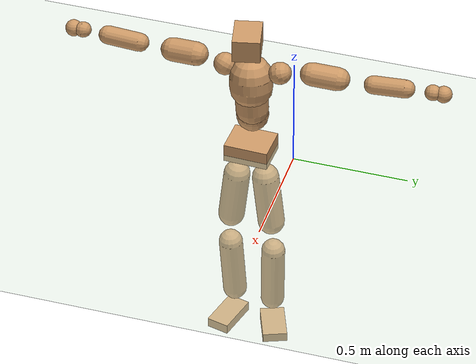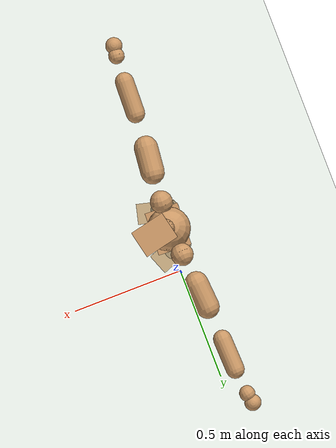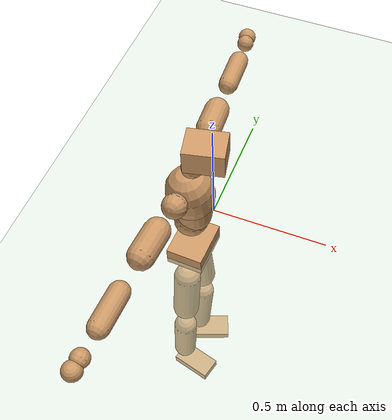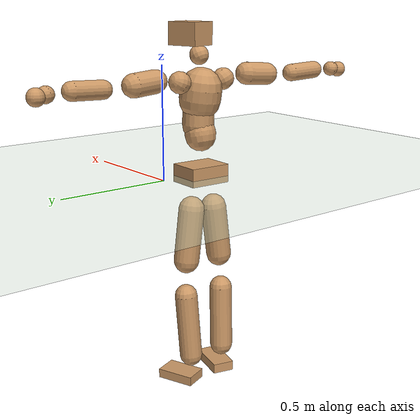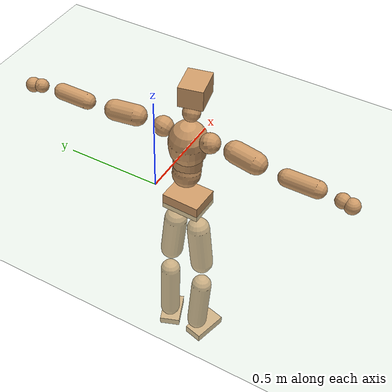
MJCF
<mujoco model="humanoid">
  <compiler coordinate="local" angle="radian"/>
  <default>
    <joint damping="0.0" armature="0.01" stiffness="0.0" limited="true"/>
    <geom conaffinity="1" condim="3" contype="7" margin="0.001" rgba="0.8 0.6 .4 1"/>
  </default>
  <asset>
    <texture type="skybox" builtin="gradient" rgb1=".4 .5 .6" rgb2="0 0 0" width="100" height="100"/>
    <texture builtin="flat" height="1278" mark="cross" markrgb="1 1 1" name="texgeom" random="0.01" rgb1="0.8 0.6 0.4" rgb2="0.8 0.6 0.4" type="cube" width="127"/>
    <texture builtin="checker" height="100" name="texplane" rgb1="0 0 0" rgb2="0.8 0.8 0.8" type="2d" width="100"/>
    <material name="MatPlane" reflectance="0.5" shininess="1" specular="1" texrepeat="60 60" texture="texplane"/>
    <material name="geom" texture="texgeom" texuniform="true"/>
  </asset>
  <worldbody>
    <light cutoff="100" diffuse="1 1 1" dir="-0 0 -1.3" directional="true" exponent="1" pos="0 0 1.3" specular=".1 .1 .1"/>
    <geom conaffinity="1" condim="3" name="floor" pos="0 0 0" rgba="0.8 0.9 0.8 1" size="100 100 .2" type="plane" material="MatPlane"/>
    <body name="Pelvis" pos="-0.0031 -0.1941 0.0185">
      <freejoint name="Pelvis"/>
      <geom type="box" contype="1" conaffinity="1" density="5359.375153" pos="-0.0115 0.0004 -0.0085" size="0.076 0.0966 0.0412" quat="0.9998 0.0000 0.0000 -0.0185" name="Pelvis"/>
      <body name="L_Hip" pos="-0.0233 0.0525 -0.0775">
        <joint name="L_Hip_x" type="hinge" pos="0 0 0" axis="1 0 0" stiffness="1600" damping="160" armature="0.02" range="-180.0000 180.0000"/>
        <joint name="L_Hip_y" type="hinge" pos="0 0 0" axis="0 1 0" stiffness="1600" damping="160" armature="0.02" range="-180.0000 180.0000"/>
        <joint name="L_Hip_z" type="hinge" pos="0 0 0" axis="0 0 1" stiffness="1600" damping="160" armature="0.02" range="-180.0000 180.0000"/>
        <geom type="capsule" contype="1" conaffinity="1" density="2040.816327" size="0.0581" fromto="0.0014 0.0101 -0.0875 0.0052 0.0380 -0.3279" name="L_Hip"/>
        <body name="L_Knee" pos="0.0065 0.0481 -0.4154">
          <joint name="L_Knee_x" type="hinge" pos="0 0 0" axis="1 0 0" stiffness="1600" damping="160" armature="0.02" range="-180.0000 180.0000"/>
          <joint name="L_Knee_y" type="hinge" pos="0 0 0" axis="0 1 0" stiffness="1600" damping="160" armature="0.02" range="-180.0000 180.0000"/>
          <joint name="L_Knee_z" type="hinge" pos="0 0 0" axis="0 0 1" stiffness="1600" damping="160" armature="0.02" range="-180.0000 180.0000"/>
          <geom type="capsule" contype="1" conaffinity="1" density="1234.567901" size="0.052" fromto="-0.0062 -0.0025 -0.0817 -0.0286 -0.0115 -0.3751" name="L_Knee"/>
          <body name="L_Ankle" pos="-0.0348 -0.014 -0.4568">
            <joint name="L_Ankle_x" type="hinge" pos="0 0 0" axis="1 0 0" stiffness="1600" damping="160" armature="0.02" range="-180.0000 180.0000"/>
            <joint name="L_Ankle_y" type="hinge" pos="0 0 0" axis="0 1 0" stiffness="1600" damping="160" armature="0.02" range="-180.0000 180.0000"/>
            <joint name="L_Ankle_z" type="hinge" pos="0 0 0" axis="0 0 1" stiffness="1600" damping="160" armature="0.02" range="-180.0000 180.0000"/>
            <geom type="box" contype="1" conaffinity="1" density="1000.000052" pos="0.0611 0.0236 -0.0314" size="0.0877 0.0537 0.021" quat="0.9831 0.0000 0.0000 0.1832" name="L_Ankle"/>
            <body name="L_Toe" pos="0.1221 0.0472 -0.0627">
              <joint name="L_Toe_x" type="hinge" pos="0 0 0" axis="1 0 0" stiffness="1000" damping="100" armature="0.02" range="-180.0000 180.0000"/>
              <joint name="L_Toe_y" type="hinge" pos="0 0 0" axis="0 1 0" stiffness="1000" damping="100" armature="0.02" range="-180.0000 180.0000"/>
              <joint name="L_Toe_z" type="hinge" pos="0 0 0" axis="0 0 1" stiffness="1000" damping="100" armature="0.02" range="-180.0000 180.0000"/>
              <geom type="box" contype="1" conaffinity="1" density="7575396.968943" pos="0.0000 0.0000 0.0316" size="0.0011 0.0026 0.0011" quat="0.9823 0.0000 0.0000 0.1875" name="L_Toe"/>
            </body>
          </body>
        </body>
      </body>
      <body name="R_Hip" pos="-0.0182 -0.055 -0.0867">
        <joint name="R_Hip_x" type="hinge" pos="0 0 0" axis="1 0 0" stiffness="1600" damping="160" armature="0.02" range="-180.0000 180.0000"/>
        <joint name="R_Hip_y" type="hinge" pos="0 0 0" axis="0 1 0" stiffness="1600" damping="160" armature="0.02" range="-180.0000 180.0000"/>
        <joint name="R_Hip_z" type="hinge" pos="0 0 0" axis="0 0 1" stiffness="1600" damping="160" armature="0.02" range="-180.0000 180.0000"/>
        <geom type="capsule" contype="1" conaffinity="1" density="2040.816327" size="0.0573" fromto="-0.0018 -0.0102 -0.0867 -0.0068 -0.0378 -0.3217" name="R_Hip"/>
        <body name="R_Knee" pos="-0.0086 -0.048 -0.4083">
          <joint name="R_Knee_x" type="hinge" pos="0 0 0" axis="1 0 0" stiffness="1600" damping="160" armature="0.02" range="-180.0000 180.0000"/>
          <joint name="R_Knee_y" type="hinge" pos="0 0 0" axis="0 1 0" stiffness="1600" damping="160" armature="0.02" range="-180.0000 180.0000"/>
          <joint name="R_Knee_z" type="hinge" pos="0 0 0" axis="0 0 1" stiffness="1600" damping="160" armature="0.02" range="-180.0000 180.0000"/>
          <geom type="capsule" contype="1" conaffinity="1" density="1234.567901" size="0.0526" fromto="-0.0060 0.0035 -0.0823 -0.0265 0.0154 -0.3659" name="R_Knee"/>
          <body name="R_Ankle" pos="-0.0324 0.0189 -0.4482">
            <joint name="R_Ankle_x" type="hinge" pos="0 0 0" axis="1 0 0" stiffness="1600" damping="160" armature="0.02" range="-180.0000 180.0000"/>
            <joint name="R_Ankle_y" type="hinge" pos="0 0 0" axis="0 1 0" stiffness="1600" damping="160" armature="0.02" range="-180.0000 180.0000"/>
            <joint name="R_Ankle_z" type="hinge" pos="0 0 0" axis="0 0 1" stiffness="1600" damping="160" armature="0.02" range="-180.0000 180.0000"/>
            <geom type="box" contype="1" conaffinity="1" density="1000.000036" pos="0.0660 -0.0166 -0.0326" size="0.0931 0.05 0.0223" quat="0.9925 0.0000 0.0000 -0.1226" name="R_Ankle"/>
            <body name="R_Toe" pos="0.132 -0.0331 -0.0652">
              <joint name="R_Toe_x" type="hinge" pos="0 0 0" axis="1 0 0" stiffness="1000" damping="100" armature="0.02" range="-180.0000 180.0000"/>
              <joint name="R_Toe_y" type="hinge" pos="0 0 0" axis="0 1 0" stiffness="1000" damping="100" armature="0.02" range="-180.0000 180.0000"/>
              <joint name="R_Toe_z" type="hinge" pos="0 0 0" axis="0 0 1" stiffness="1000" damping="100" armature="0.02" range="-180.0000 180.0000"/>
              <geom type="box" contype="1" conaffinity="1" density="8595212.628996" pos="0.0000 0.0000 0.0329" size="0.001 0.0025 0.0011" quat="0.9935 0.0000 0.0000 -0.1138" name="R_Toe"/>
            </body>
          </body>
        </body>
      </body>
      <body name="Torso" pos="-0.0277 0.0051 0.1135">
        <joint name="Torso_x" type="hinge" pos="0 0 0" axis="1 0 0" stiffness="2000" damping="200" armature="0.02" range="-180.0000 180.0000"/>
        <joint name="Torso_y" type="hinge" pos="0 0 0" axis="0 1 0" stiffness="2000" damping="200" armature="0.02" range="-180.0000 180.0000"/>
        <joint name="Torso_z" type="hinge" pos="0 0 0" axis="0 0 1" stiffness="2000" damping="200" armature="0.02" range="-180.0000 180.0000"/>
        <geom type="capsule" contype="1" conaffinity="1" density="2040.816327" size="0.0695" fromto="0.0142 0.0017 0.0680 0.0104 0.0012 0.0497" name="Torso"/>
        <body name="Spine" pos="0.0246 0.0029 0.1177">
          <joint name="Spine_x" type="hinge" pos="0 0 0" axis="1 0 0" stiffness="2000" damping="200" armature="0.02" range="-180.0000 180.0000"/>
          <joint name="Spine_y" type="hinge" pos="0 0 0" axis="0 1 0" stiffness="2000" damping="200" armature="0.02" range="-180.0000 180.0000"/>
          <joint name="Spine_z" type="hinge" pos="0 0 0" axis="0 0 1" stiffness="2000" damping="200" armature="0.02" range="-180.0000 180.0000"/>
          <geom type="capsule" contype="1" conaffinity="1" density="2040.816327" size="0.0705" fromto="0.0001 -0.0032 0.0704 -0.0000 0.0011 -0.0233" name="Spine"/>
          <body name="Chest" pos="0.0001 -0.0022 0.0471">
            <joint name="Chest_x" type="hinge" pos="0 0 0" axis="1 0 0" stiffness="2000" damping="200" armature="0.02" range="-180.0000 180.0000"/>
            <joint name="Chest_y" type="hinge" pos="0 0 0" axis="0 1 0" stiffness="2000" damping="200" armature="0.02" range="-180.0000 180.0000"/>
            <joint name="Chest_z" type="hinge" pos="0 0 0" axis="0 0 1" stiffness="2000" damping="200" armature="0.02" range="-180.0000 180.0000"/>
            <geom type="capsule" contype="1" conaffinity="1" density="2040.816327" size="0.0924" fromto="-0.0115 -0.0054 0.0916 -0.0053 -0.0025 0.0418" name="Chest"/>
            <body name="Neck" pos="-0.0162 -0.0145 0.1904">
              <joint name="Neck_x" type="hinge" pos="0 0 0" axis="1 0 0" stiffness="1000" damping="100" armature="0.02" range="-180.0000 180.0000"/>
              <joint name="Neck_y" type="hinge" pos="0 0 0" axis="0 1 0" stiffness="1000" damping="100" armature="0.02" range="-180.0000 180.0000"/>
              <joint name="Neck_z" type="hinge" pos="0 0 0" axis="0 0 1" stiffness="1000" damping="100" armature="0.02" range="-180.0000 180.0000"/>
              <geom type="capsule" contype="1" conaffinity="1" density="1000" size="0.0422" fromto="0.0236 0.0044 0.0432 0.0246 0.0046 0.0449" name="Neck"/>
              <body name="Head" pos="0.0482 0.009 0.0881">
                <joint name="Head_x" type="hinge" pos="0 0 0" axis="1 0 0" stiffness="1000" damping="100" armature="0.02" range="-180.0000 180.0000"/>
                <joint name="Head_y" type="hinge" pos="0 0 0" axis="0 1 0" stiffness="1000" damping="100" armature="0.02" range="-180.0000 180.0000"/>
                <joint name="Head_z" type="hinge" pos="0 0 0" axis="0 0 1" stiffness="1000" damping="100" armature="0.02" range="-180.0000 180.0000"/>
                <geom type="box" contype="1" conaffinity="1" density="2250.000052" pos="0.0251 0.0055 0.0450" size="0.0757 0.059 0.0506" quat="0.9942 0.0000 0.0000 0.1080" name="Head"/>
              </body>
            </body>
            <body name="L_Thorax" pos="-0.0158 0.0629 0.105">
              <joint name="L_Thorax_x" type="hinge" pos="0 0 0" axis="1 0 0" stiffness="1000" damping="100" armature="0.02" range="-180.0000 180.0000"/>
              <joint name="L_Thorax_y" type="hinge" pos="0 0 0" axis="0 1 0" stiffness="1000" damping="100" armature="0.02" range="-180.0000 180.0000"/>
              <joint name="L_Thorax_z" type="hinge" pos="0 0 0" axis="0 0 1" stiffness="1000" damping="100" armature="0.02" range="-180.0000 180.0000"/>
              <geom type="capsule" contype="1" conaffinity="1" density="1000" size="0.0482" fromto="-0.0069 0.0539 0.0209 -0.0071 0.0558 0.0216" name="L_Thorax"/>
              <body name="L_Shoulder" pos="-0.0139 0.1097 0.0425">
                <joint name="L_Shoulder_x" type="hinge" pos="0 0 0" axis="1 0 0" stiffness="1000" damping="100" armature="0.02" range="-720.0000 720.0000"/>
                <joint name="L_Shoulder_y" type="hinge" pos="0 0 0" axis="0 1 0" stiffness="1000" damping="100" armature="0.02" range="-720.0000 720.0000"/>
                <joint name="L_Shoulder_z" type="hinge" pos="0 0 0" axis="0 0 1" stiffness="1000" damping="100" armature="0.02" range="-720.0000 720.0000"/>
                <geom type="capsule" contype="1" conaffinity="1" density="1000" size="0.05" fromto="-0.0062 0.0795 -0.0057 -0.0149 0.1917 -0.0136" name="L_Shoulder"/>
                <body name="L_Elbow" pos="-0.0211 0.2712 -0.0193">
                  <joint name="L_Elbow_x" type="hinge" pos="0 0 0" axis="1 0 0" stiffness="1000" damping="100" armature="0.02" range="-720.0000 720.0000"/>
                  <joint name="L_Elbow_y" type="hinge" pos="0 0 0" axis="0 1 0" stiffness="1000" damping="100" armature="0.02" range="-720.0000 720.0000"/>
                  <joint name="L_Elbow_z" type="hinge" pos="0 0 0" axis="0 0 1" stiffness="1000" damping="100" armature="0.02" range="-720.0000 720.0000"/>
                  <geom type="capsule" contype="1" conaffinity="1" density="1000" size="0.0391" fromto="-0.0026 0.0690 0.0028 -0.0078 0.2083 0.0084" name="L_Elbow"/>
                  <body name="L_Wrist" pos="-0.0104 0.2774 0.0111">
                    <joint name="L_Wrist_x" type="hinge" pos="0 0 0" axis="1 0 0" stiffness="600" damping="60" armature="0.02" range="-180.0000 180.0000"/>
                    <joint name="L_Wrist_y" type="hinge" pos="0 0 0" axis="0 1 0" stiffness="600" damping="60" armature="0.02" range="-180.0000 180.0000"/>
                    <joint name="L_Wrist_z" type="hinge" pos="0 0 0" axis="0 0 1" stiffness="600" damping="60" armature="0.02" range="-180.0000 180.0000"/>
                    <geom type="capsule" contype="1" conaffinity="1" density="1000" size="0.0339" fromto="-0.0081 0.0432 -0.0052 -0.0085 0.0452 -0.0054" name="L_Wrist"/>
                    <body name="L_Hand" pos="-0.0166 0.0884 -0.0105">
                      <joint name="L_Hand_x" type="hinge" pos="0 0 0" axis="1 0 0" stiffness="600" damping="60" armature="0.02" range="-180.0000 180.0000"/>
                      <joint name="L_Hand_y" type="hinge" pos="0 0 0" axis="0 1 0" stiffness="600" damping="60" armature="0.02" range="-180.0000 180.0000"/>
                      <joint name="L_Hand_z" type="hinge" pos="0 0 0" axis="0 0 1" stiffness="600" damping="60" armature="0.02" range="-180.0000 180.0000"/>
                      <geom type="sphere" contype="1" conaffinity="1" density="1000" size="0.0360" pos="0.0000 0.0000 0.0000" name="L_Hand"/>
                    </body>
                  </body>
                </body>
              </body>
            </body>
            <body name="R_Thorax" pos="-0.0184 -0.072 0.1047">
              <joint name="R_Thorax_x" type="hinge" pos="0 0 0" axis="1 0 0" stiffness="1000" damping="100" armature="0.02" range="-180.0000 180.0000"/>
              <joint name="R_Thorax_y" type="hinge" pos="0 0 0" axis="0 1 0" stiffness="1000" damping="100" armature="0.02" range="-180.0000 180.0000"/>
              <joint name="R_Thorax_z" type="hinge" pos="0 0 0" axis="0 0 1" stiffness="1000" damping="100" armature="0.02" range="-180.0000 180.0000"/>
              <geom type="capsule" contype="1" conaffinity="1" density="1000" size="0.0484" fromto="-0.0017 -0.0485 0.0215 -0.0018 -0.0503 0.0223" name="R_Thorax"/>
              <body name="R_Shoulder" pos="-0.0035 -0.0988 0.0439">
                <joint name="R_Shoulder_x" type="hinge" pos="0 0 0" axis="1 0 0" stiffness="1000" damping="100" armature="0.02" range="-720.0000 720.0000"/>
                <joint name="R_Shoulder_y" type="hinge" pos="0 0 0" axis="0 1 0" stiffness="1000" damping="100" armature="0.02" range="-720.0000 720.0000"/>
                <joint name="R_Shoulder_z" type="hinge" pos="0 0 0" axis="0 0 1" stiffness="1000" damping="100" armature="0.02" range="-720.0000 720.0000"/>
                <geom type="capsule" contype="1" conaffinity="1" density="1000" size="0.051" fromto="-0.0085 -0.0803 -0.0061 -0.0199 -0.1886 -0.0144" name="R_Shoulder"/>
                <body name="R_Elbow" pos="-0.0284 -0.2689 -0.0205">
                  <joint name="R_Elbow_x" type="hinge" pos="0 0 0" axis="1 0 0" stiffness="1000" damping="100" armature="0.02" range="-720.0000 720.0000"/>
                  <joint name="R_Elbow_y" type="hinge" pos="0 0 0" axis="0 1 0" stiffness="1000" damping="100" armature="0.02" range="-720.0000 720.0000"/>
                  <joint name="R_Elbow_z" type="hinge" pos="0 0 0" axis="0 0 1" stiffness="1000" damping="100" armature="0.02" range="-720.0000 720.0000"/>
                  <geom type="capsule" contype="1" conaffinity="1" density="1000" size="0.04" fromto="-0.0021 -0.0700 0.0026 -0.0065 -0.2132 0.0079" name="R_Elbow"/>
                  <body name="R_Wrist" pos="-0.0086 -0.2831 0.0105">
                    <joint name="R_Wrist_x" type="hinge" pos="0 0 0" axis="1 0 0" stiffness="600" damping="60" armature="0.02" range="-180.0000 180.0000"/>
                    <joint name="R_Wrist_y" type="hinge" pos="0 0 0" axis="0 1 0" stiffness="600" damping="60" armature="0.02" range="-180.0000 180.0000"/>
                    <joint name="R_Wrist_z" type="hinge" pos="0 0 0" axis="0 0 1" stiffness="600" damping="60" armature="0.02" range="-180.0000 180.0000"/>
                    <geom type="capsule" contype="1" conaffinity="1" density="1000" size="0.0342" fromto="-0.0052 -0.0434 -0.0042 -0.0054 -0.0454 -0.0044" name="R_Wrist"/>
                    <body name="R_Hand" pos="-0.0106 -0.0888 -0.0086">
                      <joint name="R_Hand_x" type="hinge" pos="0 0 0" axis="1 0 0" stiffness="600" damping="60" armature="0.02" range="-180.0000 180.0000"/>
                      <joint name="R_Hand_y" type="hinge" pos="0 0 0" axis="0 1 0" stiffness="600" damping="60" armature="0.02" range="-180.0000 180.0000"/>
                      <joint name="R_Hand_z" type="hinge" pos="0 0 0" axis="0 0 1" stiffness="600" damping="60" armature="0.02" range="-180.0000 180.0000"/>
                      <geom type="sphere" contype="1" conaffinity="1" density="1000" size="0.0360" pos="0.0000 0.0000 0.0000" name="R_Hand"/>
                    </body>
                  </body>
                </body>
              </body>
            </body>
          </body>
        </body>
      </body>
    </body>
  </worldbody>
  <actuator>
    <motor name="L_Hip_x" joint="L_Hip_x" gear="500"/>
    <motor name="L_Hip_y" joint="L_Hip_y" gear="500"/>
    <motor name="L_Hip_z" joint="L_Hip_z" gear="500"/>
    <motor name="L_Knee_x" joint="L_Knee_x" gear="500"/>
    <motor name="L_Knee_y" joint="L_Knee_y" gear="500"/>
    <motor name="L_Knee_z" joint="L_Knee_z" gear="500"/>
    <motor name="L_Ankle_x" joint="L_Ankle_x" gear="500"/>
    <motor name="L_Ankle_y" joint="L_Ankle_y" gear="500"/>
    <motor name="L_Ankle_z" joint="L_Ankle_z" gear="500"/>
    <motor name="L_Toe_x" joint="L_Toe_x" gear="500"/>
    <motor name="L_Toe_y" joint="L_Toe_y" gear="500"/>
    <motor name="L_Toe_z" joint="L_Toe_z" gear="500"/>
    <motor name="R_Hip_x" joint="R_Hip_x" gear="500"/>
    <motor name="R_Hip_y" joint="R_Hip_y" gear="500"/>
    <motor name="R_Hip_z" joint="R_Hip_z" gear="500"/>
    <motor name="R_Knee_x" joint="R_Knee_x" gear="500"/>
    <motor name="R_Knee_y" joint="R_Knee_y" gear="500"/>
    <motor name="R_Knee_z" joint="R_Knee_z" gear="500"/>
    <motor name="R_Ankle_x" joint="R_Ankle_x" gear="500"/>
    <motor name="R_Ankle_y" joint="R_Ankle_y" gear="500"/>
    <motor name="R_Ankle_z" joint="R_Ankle_z" gear="500"/>
    <motor name="R_Toe_x" joint="R_Toe_x" gear="500"/>
    <motor name="R_Toe_y" joint="R_Toe_y" gear="500"/>
    <motor name="R_Toe_z" joint="R_Toe_z" gear="500"/>
    <motor name="Torso_x" joint="Torso_x" gear="500"/>
    <motor name="Torso_y" joint="Torso_y" gear="500"/>
    <motor name="Torso_z" joint="Torso_z" gear="500"/>
    <motor name="Spine_x" joint="Spine_x" gear="500"/>
    <motor name="Spine_y" joint="Spine_y" gear="500"/>
    <motor name="Spine_z" joint="Spine_z" gear="500"/>
    <motor name="Chest_x" joint="Chest_x" gear="500"/>
    <motor name="Chest_y" joint="Chest_y" gear="500"/>
    <motor name="Chest_z" joint="Chest_z" gear="500"/>
    <motor name="Neck_x" joint="Neck_x" gear="500"/>
    <motor name="Neck_y" joint="Neck_y" gear="500"/>
    <motor name="Neck_z" joint="Neck_z" gear="500"/>
    <motor name="Head_x" joint="Head_x" gear="500"/>
    <motor name="Head_y" joint="Head_y" gear="500"/>
    <motor name="Head_z" joint="Head_z" gear="500"/>
    <motor name="L_Thorax_x" joint="L_Thorax_x" gear="500"/>
    <motor name="L_Thorax_y" joint="L_Thorax_y" gear="500"/>
    <motor name="L_Thorax_z" joint="L_Thorax_z" gear="500"/>
    <motor name="L_Shoulder_x" joint="L_Shoulder_x" gear="500"/>
    <motor name="L_Shoulder_y" joint="L_Shoulder_y" gear="500"/>
    <motor name="L_Shoulder_z" joint="L_Shoulder_z" gear="500"/>
    <motor name="L_Elbow_x" joint="L_Elbow_x" gear="500"/>
    <motor name="L_Elbow_y" joint="L_Elbow_y" gear="500"/>
    <motor name="L_Elbow_z" joint="L_Elbow_z" gear="500"/>
    <motor name="L_Wrist_x" joint="L_Wrist_x" gear="500"/>
    <motor name="L_Wrist_y" joint="L_Wrist_y" gear="500"/>
    <motor name="L_Wrist_z" joint="L_Wrist_z" gear="500"/>
    <motor name="L_Hand_x" joint="L_Hand_x" gear="500"/>
    <motor name="L_Hand_y" joint="L_Hand_y" gear="500"/>
    <motor name="L_Hand_z" joint="L_Hand_z" gear="500"/>
    <motor name="R_Thorax_x" joint="R_Thorax_x" gear="500"/>
    <motor name="R_Thorax_y" joint="R_Thorax_y" gear="500"/>
    <motor name="R_Thorax_z" joint="R_Thorax_z" gear="500"/>
    <motor name="R_Shoulder_x" joint="R_Shoulder_x" gear="500"/>
    <motor name="R_Shoulder_y" joint="R_Shoulder_y" gear="500"/>
    <motor name="R_Shoulder_z" joint="R_Shoulder_z" gear="500"/>
    <motor name="R_Elbow_x" joint="R_Elbow_x" gear="500"/>
    <motor name="R_Elbow_y" joint="R_Elbow_y" gear="500"/>
    <motor name="R_Elbow_z" joint="R_Elbow_z" gear="500"/>
    <motor name="R_Wrist_x" joint="R_Wrist_x" gear="500"/>
    <motor name="R_Wrist_y" joint="R_Wrist_y" gear="500"/>
    <motor name="R_Wrist_z" joint="R_Wrist_z" gear="500"/>
    <motor name="R_Hand_x" joint="R_Hand_x" gear="500"/>
    <motor name="R_Hand_y" joint="R_Hand_y" gear="500"/>
    <motor name="R_Hand_z" joint="R_Hand_z" gear="500"/>
  </actuator>
  <contact>
    <exclude body1="Torso" body2="Chest"/>
    <exclude body1="Head" body2="Chest"/>
    <exclude body1="R_Knee" body2="R_Toe"/>
    <exclude body1="R_Knee" body2="L_Ankle"/>
    <exclude body1="R_Knee" body2="L_Toe"/>
    <exclude body1="L_Knee" body2="L_Toe"/>
    <exclude body1="L_Knee" body2="R_Ankle"/>
    <exclude body1="L_Knee" body2="R_Toe"/>
    <exclude body1="L_Shoulder" body2="Chest"/>
    <exclude body1="R_Shoulder" body2="Chest"/>
  </contact>
  <sensor/>
  <size njmax="700" nconmax="700"/>
</mujoco>
